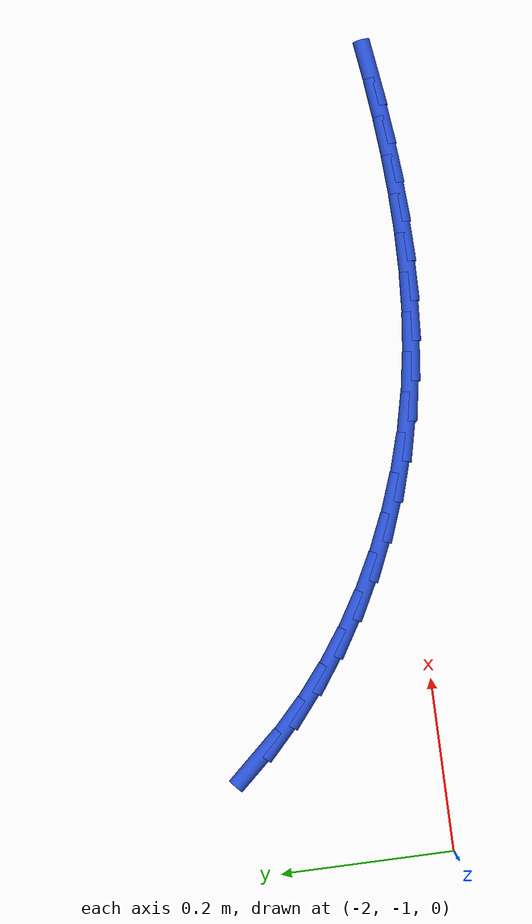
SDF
<sdf version="1.6">
 <world name="default">
  <model name="ground_plane">
   <static>1</static>
   <link name="link">
    <collision name="collision">
     <geometry><plane><normal>0 0 1</normal><size>100 100</size></plane></geometry>
     <surface><friction><ode><mu>100</mu><mu2>50</mu2></ode></friction></surface>
    </collision>
    <visual name="visual">
     <cast_shadows>0</cast_shadows>
     <geometry><plane><normal>0 0 1</normal><size>100 100</size></plane></geometry>
     <material>
      <script><uri>file://media/materials/scripts/gazebo.material</uri><name>Gazebo/WhiteGlow</name></script>
     </material>
    </visual>
   </link>
  </model>
  <model name="line">
   <link name="link_96">
    <pose>-1.8665600565300533 -0.7916245892698197 0.01 0 1.57 -0.8361239381962975</pose>
    <collision name="collision">
     <geometry><cylinder><radius>0.01</radius><length>0.08</length></cylinder></geometry>
    </collision>
    <visual name="visual">
     <material>
      <script><name>Gazebo/Blue</name><uri>file://media/materials/scripts/gazebo.material</uri></script>
     </material>
     <geometry><cylinder><radius>0.01</radius><length>0.08</length></cylinder></geometry>
    </visual>
   </link>
   <link name="link_97">
    <pose>-1.8356846692806463 -0.8258026987813915 0.01 0 1.57 -0.7556558930417523</pose>
    <collision name="collision">
     <geometry><cylinder><radius>0.01</radius><length>0.08</length></cylinder></geometry>
    </collision>
    <visual name="visual">
     <material>
      <script><name>Gazebo/Blue</name><uri>file://media/materials/scripts/gazebo.material</uri></script>
     </material>
     <geometry><cylinder><radius>0.01</radius><length>0.08</length></cylinder></geometry>
    </visual>
   </link>
   <link name="link_98">
    <pose>-1.8018052925686607 -0.8577244240467362 0.01 0 1.57 -0.68029355741455</pose>
    <collision name="collision">
     <geometry><cylinder><radius>0.01</radius><length>0.08</length></cylinder></geometry>
    </collision>
    <visual name="visual">
     <material>
      <script><name>Gazebo/Blue</name><uri>file://media/materials/scripts/gazebo.material</uri></script>
     </material>
     <geometry><cylinder><radius>0.01</radius><length>0.08</length></cylinder></geometry>
    </visual>
   </link>
   <link name="link_99">
    <pose>-1.765266019386978 -0.8872900678647151 0.01 0 1.57 -0.6091924111811247</pose>
    <collision name="collision">
     <geometry><cylinder><radius>0.01</radius><length>0.08</length></cylinder></geometry>
    </collision>
    <visual name="visual">
     <material>
      <script><name>Gazebo/Blue</name><uri>file://media/materials/scripts/gazebo.material</uri></script>
     </material>
     <geometry><cylinder><radius>0.01</radius><length>0.08</length></cylinder></geometry>
    </visual>
   </link>
   <link name="link_100">
    <pose>-1.7264109427284813 -0.9143999330341864 0.01 0 1.57 -0.5414691334773453</pose>
    <collision name="collision">
     <geometry><cylinder><radius>0.01</radius><length>0.08</length></cylinder></geometry>
    </collision>
    <visual name="visual">
     <material>
      <script><name>Gazebo/Blue</name><uri>file://media/materials/scripts/gazebo.material</uri></script>
     </material>
     <geometry><cylinder><radius>0.01</radius><length>0.08</length></cylinder></geometry>
    </visual>
   </link>
   <link name="link_101">
    <pose>-1.6855841555860545 -0.9389543223540102 0.01 0 1.57 -0.4762305302169825</pose>
    <collision name="collision">
     <geometry><cylinder><radius>0.01</radius><length>0.08</length></cylinder></geometry>
    </collision>
    <visual name="visual">
     <material>
      <script><name>Gazebo/Blue</name><uri>file://media/materials/scripts/gazebo.material</uri></script>
     </material>
     <geometry><cylinder><radius>0.01</radius><length>0.08</length></cylinder></geometry>
    </visual>
   </link>
   <link name="link_102">
    <pose>-1.6431297509525773 -0.9608535386230459 0.01 0 1.57 -0.4125831801011526</pose>
    <collision name="collision">
     <geometry><cylinder><radius>0.01</radius><length>0.08</length></cylinder></geometry>
    </collision>
    <visual name="visual">
     <material>
      <script><name>Gazebo/Blue</name><uri>file://media/materials/scripts/gazebo.material</uri></script>
     </material>
     <geometry><cylinder><radius>0.01</radius><length>0.08</length></cylinder></geometry>
    </visual>
   </link>
   <link name="link_103">
    <pose>-1.599391821820934 -0.9799978846401532 0.01 0 1.57 -0.3496299918689002</pose>
    <collision name="collision">
     <geometry><cylinder><radius>0.01</radius><length>0.08</length></cylinder></geometry>
    </collision>
    <visual name="visual">
     <material>
      <script><name>Gazebo/Blue</name><uri>file://media/materials/scripts/gazebo.material</uri></script>
     </material>
     <geometry><cylinder><radius>0.01</radius><length>0.08</length></cylinder></geometry>
    </visual>
   </link>
   <link name="link_104">
    <pose>-1.5547144611840074 -0.996287663204191 0.01 0 1.57 -0.2864582756616918</pose>
    <collision name="collision">
     <geometry><cylinder><radius>0.01</radius><length>0.08</length></cylinder></geometry>
    </collision>
    <visual name="visual">
     <material>
      <script><name>Gazebo/Blue</name><uri>file://media/materials/scripts/gazebo.material</uri></script>
     </material>
     <geometry><cylinder><radius>0.01</radius><length>0.08</length></cylinder></geometry>
    </visual>
   </link>
   <link name="link_105">
    <pose>-1.5094417620346785 -1.0096231771140194 0.01 0 1.57 -0.22308792132969577</pose>
    <collision name="collision">
     <geometry><cylinder><radius>0.01</radius><length>0.08</length></cylinder></geometry>
    </collision>
    <visual name="visual">
     <material>
      <script><name>Gazebo/Blue</name><uri>file://media/materials/scripts/gazebo.material</uri></script>
     </material>
     <geometry><cylinder><radius>0.01</radius><length>0.08</length></cylinder></geometry>
    </visual>
   </link>
   <link name="link_106">
    <pose>-1.4638711313395358 -1.019961513000028 0.01 0 1.57 -0.16310201112393813</pose>
    <collision name="collision">
     <geometry><cylinder><radius>0.01</radius><length>0.08</length></cylinder></geometry>
    </collision>
    <visual name="visual">
     <material>
      <script><name>Gazebo/Blue</name><uri>file://media/materials/scripts/gazebo.material</uri></script>
     </material>
     <geometry><cylinder><radius>0.01</radius><length>0.08</length></cylinder></geometry>
    </visual>
   </link>
   <link name="link_107">
    <pose>-1.418108747092154 -1.027492347726745 0.01 0 1.57 -0.10792085548379492</pose>
    <collision name="collision">
     <geometry><cylinder><radius>0.01</radius><length>0.08</length></cylinder></geometry>
    </collision>
    <visual name="visual">
     <material>
      <script><name>Gazebo/Blue</name><uri>file://media/materials/scripts/gazebo.material</uri></script>
     </material>
     <geometry><cylinder><radius>0.01</radius><length>0.08</length></cylinder></geometry>
    </visual>
   </link>
   <link name="link_108">
    <pose>-1.3722118320295018 -1.0324649020364773 0.01 0 1.57 -0.057869835349900214</pose>
    <collision name="collision">
     <geometry><cylinder><radius>0.01</radius><length>0.08</length></cylinder></geometry>
    </collision>
    <visual name="visual">
     <material>
      <script><name>Gazebo/Blue</name><uri>file://media/materials/scripts/gazebo.material</uri></script>
     </material>
     <geometry><cylinder><radius>0.01</radius><length>0.08</length></cylinder></geometry>
    </visual>
   </link>
   <link name="link_109">
    <pose>-1.3262376088648826 -1.0351283967003173 0.01 0 1.57 -0.01312382229025228</pose>
    <collision name="collision">
     <geometry><cylinder><radius>0.01</radius><length>0.08</length></cylinder></geometry>
    </collision>
    <visual name="visual">
     <material>
      <script><name>Gazebo/Blue</name><uri>file://media/materials/scripts/gazebo.material</uri></script>
     </material>
     <geometry><cylinder><radius>0.01</radius><length>0.08</length></cylinder></geometry>
    </visual>
   </link>
   <link name="link_110">
    <pose>-1.280243300311596 -1.0357320524893585 0.01 0 1.57 0.026256727804998995</pose>
    <collision name="collision">
     <geometry><cylinder><radius>0.01</radius><length>0.08</length></cylinder></geometry>
    </collision>
    <visual name="visual">
     <material>
      <script><name>Gazebo/Blue</name><uri>file://media/materials/scripts/gazebo.material</uri></script>
     </material>
     <geometry><cylinder><radius>0.01</radius><length>0.08</length></cylinder></geometry>
    </visual>
   </link>
   <link name="link_111">
    <pose>-1.2342861290829457 -1.0345250901746927 0.01 0 1.57 0.060288601938660064</pose>
    <collision name="collision">
     <geometry><cylinder><radius>0.01</radius><length>0.08</length></cylinder></geometry>
    </collision>
    <visual name="visual">
     <material>
      <script><name>Gazebo/Blue</name><uri>file://media/materials/scripts/gazebo.material</uri></script>
     </material>
     <geometry><cylinder><radius>0.01</radius><length>0.08</length></cylinder></geometry>
    </visual>
   </link>
   <link name="link_112">
    <pose>-1.188423317892233 -1.031756730527413 0.01 0 1.57 0.08903332749605924</pose>
    <collision name="collision">
     <geometry><cylinder><radius>0.01</radius><length>0.08</length></cylinder></geometry>
    </collision>
    <visual name="visual">
     <material>
      <script><name>Gazebo/Blue</name><uri>file://media/materials/scripts/gazebo.material</uri></script>
     </material>
     <geometry><cylinder><radius>0.01</radius><length>0.08</length></cylinder></geometry>
    </visual>
   </link>
   <link name="link_113">
    <pose>-1.142712060746252 -1.027676117247454 0.01 0 1.57 0.11365521727112914</pose>
    <collision name="collision">
     <geometry><cylinder><radius>0.01</radius><length>0.08</length></cylinder></geometry>
    </collision>
    <visual name="visual">
     <material>
      <script><name>Gazebo/Blue</name><uri>file://media/materials/scripts/gazebo.material</uri></script>
     </material>
     <geometry><cylinder><radius>0.01</radius><length>0.08</length></cylinder></geometry>
    </visual>
   </link>
   <link name="link_114">
    <pose>-1.0971900009336855 -1.0224799043158819 0.01 0 1.57 0.13715138338703758</pose>
    <collision name="collision">
     <geometry><cylinder><radius>0.01</radius><length>0.08</length></cylinder></geometry>
    </collision>
    <visual name="visual">
     <material>
      <script><name>Gazebo/Blue</name><uri>file://media/materials/scripts/gazebo.material</uri></script>
     </material>
     <geometry><cylinder><radius>0.01</radius><length>0.08</length></cylinder></geometry>
    </visual>
   </link>
  </model>
 </world>
</sdf>
